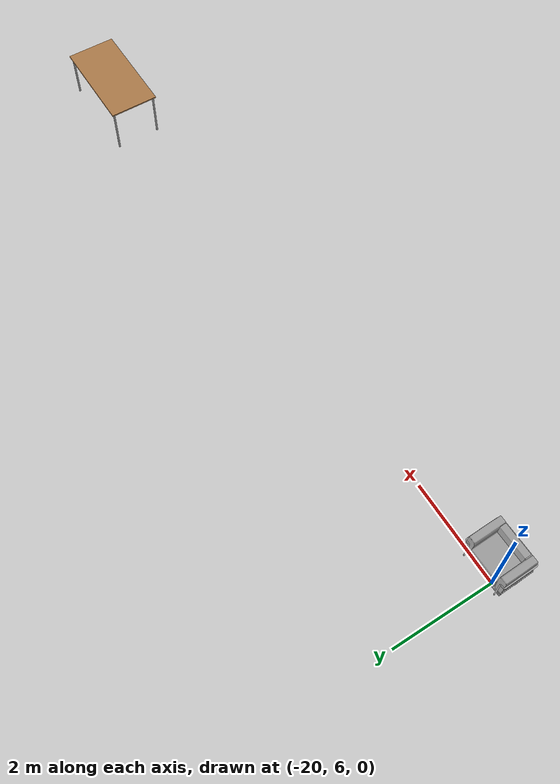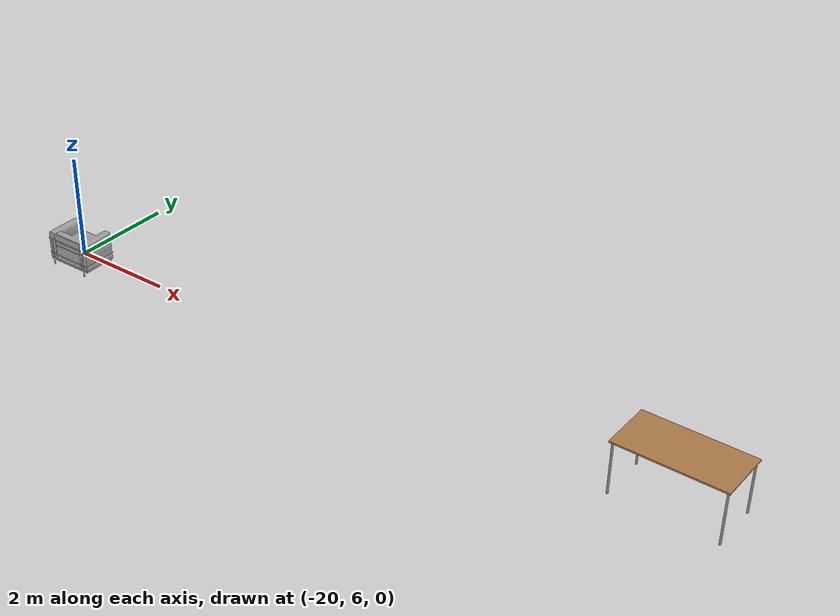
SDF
<sdf version="1.6">
 <model name="bibeg">
  <link name="link_clone_2">
   <pose>-7.46995 6.3907 0 0 -0 0</pose>
   <inertial>
    <mass>1</mass>
    <inertia><ixx>1</ixx><ixy>0</ixy><ixz>0</ixz><iyy>1</iyy><iyz>0</iyz><izz>1</izz></inertia>
   </inertial>
   <visual name="visual1">
    <pose>0 0 1 0 -0 0</pose>
    <geometry><box><size>2 1 0.03</size></box></geometry>
    <material>
     <script><uri>file://media/materials/scripts/gazebo.material</uri><name>Gazebo/Wood</name></script>
     <shader type="vertex"><normal_map>__default__</normal_map></shader>
     <ambient>1 1 1 1</ambient>
     <diffuse>1 1 1 1</diffuse>
     <specular>0.2 0.2 0.2 1</specular>
     <emissive>0 0 0 1</emissive>
    </material>
   </visual>
   <visual name="front_left_leg">
    <pose>0.95 0.45 0.5 0 -0 0</pose>
    <geometry><cylinder><radius>0.02</radius><length>1</length></cylinder></geometry>
    <material>
     <script><uri>file://media/materials/scripts/gazebo.material</uri><name>Gazebo/Grey</name></script>
     <shader type="vertex"><normal_map>__default__</normal_map></shader>
     <ambient>0.3 0.3 0.3 1</ambient>
     <diffuse>0.7 0.7 0.7 1</diffuse>
     <specular>0.01 0.01 0.01 1</specular>
     <emissive>0 0 0 1</emissive>
    </material>
   </visual>
   <visual name="front_right_leg">
    <pose>0.95 -0.45 0.5 0 -0 0</pose>
    <geometry><cylinder><radius>0.02</radius><length>1</length></cylinder></geometry>
    <material>
     <script><uri>file://media/materials/scripts/gazebo.material</uri><name>Gazebo/Grey</name></script>
     <shader type="vertex"><normal_map>__default__</normal_map></shader>
     <ambient>0.3 0.3 0.3 1</ambient>
     <diffuse>0.7 0.7 0.7 1</diffuse>
     <specular>0.01 0.01 0.01 1</specular>
     <emissive>0 0 0 1</emissive>
    </material>
   </visual>
   <visual name="back_right_leg">
    <pose>-0.95 -0.45 0.5 0 -0 0</pose>
    <geometry><cylinder><radius>0.02</radius><length>1</length></cylinder></geometry>
    <material>
     <script><uri>file://media/materials/scripts/gazebo.material</uri><name>Gazebo/Grey</name></script>
     <shader type="vertex"><normal_map>__default__</normal_map></shader>
     <ambient>0.3 0.3 0.3 1</ambient>
     <diffuse>0.7 0.7 0.7 1</diffuse>
     <specular>0.01 0.01 0.01 1</specular>
     <emissive>0 0 0 1</emissive>
    </material>
   </visual>
   <visual name="back_left_leg">
    <pose>-0.95 0.45 0.5 0 -0 0</pose>
    <geometry><cylinder><radius>0.02</radius><length>1</length></cylinder></geometry>
    <material>
     <script><uri>file://media/materials/scripts/gazebo.material</uri><name>Gazebo/Grey</name></script>
     <shader type="vertex"><normal_map>__default__</normal_map></shader>
     <ambient>0.3 0.3 0.3 1</ambient>
     <diffuse>0.7 0.7 0.7 1</diffuse>
     <specular>0.01 0.01 0.01 1</specular>
     <emissive>0 0 0 1</emissive>
    </material>
   </visual>
   <collision name="surface">
    <pose>0 0 1 0 -0 0</pose>
    <geometry><box><size>2 1 0.03</size></box></geometry>
    <surface>
     <friction>
      <ode><mu>1</mu><mu2>1</mu2><fdir1>0 0 0</fdir1><slip1>0</slip1><slip2>0</slip2></ode>
      <torsional>
       <coefficient>1</coefficient>
       <patch_radius>0</patch_radius>
       <surface_radius>0</surface_radius>
       <use_patch_radius>1</use_patch_radius>
       <ode><slip>0</slip></ode>
      </torsional>
     </friction>
     <bounce><restitution_coefficient>0</restitution_coefficient><threshold>1e+06</threshold></bounce>
     <contact>
      <collide_without_contact>0</collide_without_contact>
      <collide_without_contact_bitmask>1</collide_without_contact_bitmask>
      <collide_bitmask>1</collide_bitmask>
      <ode>
       <soft_cfm>0</soft_cfm>
       <soft_erp>0.2</soft_erp>
       <kp>1e+13</kp>
       <kd>1</kd>
       <max_vel>0.01</max_vel>
       <min_depth>0</min_depth>
      </ode>
      <bullet>
       <split_impulse>1</split_impulse>
       <split_impulse_penetration_threshold>-0.01</split_impulse_penetration_threshold>
       <soft_cfm>0</soft_cfm>
       <soft_erp>0.2</soft_erp>
       <kp>1e+13</kp>
       <kd>1</kd>
      </bullet>
     </contact>
    </surface>
   </collision>
   <collision name="front_left_leg_0">
    <pose>0.95 0.45 0.5 0 -0 0</pose>
    <geometry><cylinder><radius>0.02</radius><length>1</length></cylinder></geometry>
    <surface>
     <friction>
      <ode><mu>1</mu><mu2>1</mu2><fdir1>0 0 0</fdir1><slip1>0</slip1><slip2>0</slip2></ode>
      <torsional>
       <coefficient>1</coefficient>
       <patch_radius>0</patch_radius>
       <surface_radius>0</surface_radius>
       <use_patch_radius>1</use_patch_radius>
       <ode><slip>0</slip></ode>
      </torsional>
     </friction>
     <bounce><restitution_coefficient>0</restitution_coefficient><threshold>1e+06</threshold></bounce>
     <contact>
      <collide_without_contact>0</collide_without_contact>
      <collide_without_contact_bitmask>1</collide_without_contact_bitmask>
      <collide_bitmask>1</collide_bitmask>
      <ode>
       <soft_cfm>0</soft_cfm>
       <soft_erp>0.2</soft_erp>
       <kp>1e+13</kp>
       <kd>1</kd>
       <max_vel>0.01</max_vel>
       <min_depth>0</min_depth>
      </ode>
      <bullet>
       <split_impulse>1</split_impulse>
       <split_impulse_penetration_threshold>-0.01</split_impulse_penetration_threshold>
       <soft_cfm>0</soft_cfm>
       <soft_erp>0.2</soft_erp>
       <kp>1e+13</kp>
       <kd>1</kd>
      </bullet>
     </contact>
    </surface>
   </collision>
   <collision name="front_right_leg_0">
    <pose>0.95 -0.45 0.5 0 -0 0</pose>
    <geometry><cylinder><radius>0.02</radius><length>1</length></cylinder></geometry>
    <surface>
     <friction>
      <ode><mu>1</mu><mu2>1</mu2><fdir1>0 0 0</fdir1><slip1>0</slip1><slip2>0</slip2></ode>
      <torsional>
       <coefficient>1</coefficient>
       <patch_radius>0</patch_radius>
       <surface_radius>0</surface_radius>
       <use_patch_radius>1</use_patch_radius>
       <ode><slip>0</slip></ode>
      </torsional>
     </friction>
     <bounce><restitution_coefficient>0</restitution_coefficient><threshold>1e+06</threshold></bounce>
     <contact>
      <collide_without_contact>0</collide_without_contact>
      <collide_without_contact_bitmask>1</collide_without_contact_bitmask>
      <collide_bitmask>1</collide_bitmask>
      <ode>
       <soft_cfm>0</soft_cfm>
       <soft_erp>0.2</soft_erp>
       <kp>1e+13</kp>
       <kd>1</kd>
       <max_vel>0.01</max_vel>
       <min_depth>0</min_depth>
      </ode>
      <bullet>
       <split_impulse>1</split_impulse>
       <split_impulse_penetration_threshold>-0.01</split_impulse_penetration_threshold>
       <soft_cfm>0</soft_cfm>
       <soft_erp>0.2</soft_erp>
       <kp>1e+13</kp>
       <kd>1</kd>
      </bullet>
     </contact>
    </surface>
   </collision>
   <collision name="back_right_leg_0">
    <pose>-0.95 -0.45 0.5 0 -0 0</pose>
    <geometry><cylinder><radius>0.02</radius><length>1</length></cylinder></geometry>
    <surface>
     <friction>
      <ode><mu>1</mu><mu2>1</mu2><fdir1>0 0 0</fdir1><slip1>0</slip1><slip2>0</slip2></ode>
      <torsional>
       <coefficient>1</coefficient>
       <patch_radius>0</patch_radius>
       <surface_radius>0</surface_radius>
       <use_patch_radius>1</use_patch_radius>
       <ode><slip>0</slip></ode>
      </torsional>
     </friction>
     <bounce><restitution_coefficient>0</restitution_coefficient><threshold>1e+06</threshold></bounce>
     <contact>
      <collide_without_contact>0</collide_without_contact>
      <collide_without_contact_bitmask>1</collide_without_contact_bitmask>
      <collide_bitmask>1</collide_bitmask>
      <ode>
       <soft_cfm>0</soft_cfm>
       <soft_erp>0.2</soft_erp>
       <kp>1e+13</kp>
       <kd>1</kd>
       <max_vel>0.01</max_vel>
       <min_depth>0</min_depth>
      </ode>
      <bullet>
       <split_impulse>1</split_impulse>
       <split_impulse_penetration_threshold>-0.01</split_impulse_penetration_threshold>
       <soft_cfm>0</soft_cfm>
       <soft_erp>0.2</soft_erp>
       <kp>1e+13</kp>
       <kd>1</kd>
      </bullet>
     </contact>
    </surface>
   </collision>
   <collision name="back_left_leg_0">
    <pose>-0.68 0.38 0.5 0 -0 0</pose>
    <geometry><cylinder><radius>0.02</radius><length>1</length></cylinder></geometry>
    <surface>
     <friction>
      <ode><mu>1</mu><mu2>1</mu2><fdir1>0 0 0</fdir1><slip1>0</slip1><slip2>0</slip2></ode>
      <torsional>
       <coefficient>1</coefficient>
       <patch_radius>0</patch_radius>
       <surface_radius>0</surface_radius>
       <use_patch_radius>1</use_patch_radius>
       <ode><slip>0</slip></ode>
      </torsional>
     </friction>
     <bounce><restitution_coefficient>0</restitution_coefficient><threshold>1e+06</threshold></bounce>
     <contact>
      <collide_without_contact>0</collide_without_contact>
      <collide_without_contact_bitmask>1</collide_without_contact_bitmask>
      <collide_bitmask>1</collide_bitmask>
      <ode>
       <soft_cfm>0</soft_cfm>
       <soft_erp>0.2</soft_erp>
       <kp>1e+13</kp>
       <kd>1</kd>
       <max_vel>0.01</max_vel>
       <min_depth>0</min_depth>
      </ode>
      <bullet>
       <split_impulse>1</split_impulse>
       <split_impulse_penetration_threshold>-0.01</split_impulse_penetration_threshold>
       <soft_cfm>0</soft_cfm>
       <soft_erp>0.2</soft_erp>
       <kp>1e+13</kp>
       <kd>1</kd>
      </bullet>
     </contact>
    </surface>
   </collision>
  </link>
  <model name="chair_set_1_3_clone_2">
   <link name="link_16">
    <pose>0.07217 0.114259 -0.032065 0 -0 1.57</pose>
    <visual name="visual">
     <geometry><mesh><uri>model://chair_set_1/meshes/chair_frame.dae</uri><scale>1 1 1</scale></mesh></geometry>
     <material>
      <lighting>1</lighting>
      <ambient>0.3 0.3 0.3 1</ambient>
      <diffuse>0.7 0.7 0.7 1</diffuse>
      <specular>0.01 0.01 0.01 1</specular>
      <emissive>0 0 0 1</emissive>
      <shader type="vertex"><normal_map>__default__</normal_map></shader>
     </material>
    </visual>
    <collision name="collision">
     <geometry><mesh><uri>model://chair_set_1/meshes/chair_frame.dae</uri><scale>1 1 1</scale></mesh></geometry>
    </collision>
   </link>
   <link name="link_17">
    <pose>0.069192 0.1237 -0.032065 0 -0 1.57</pose>
    <visual name="visual">
     <geometry><mesh><uri>model://chair_set_1/meshes/chair_cushions.dae</uri><scale>1 1 1</scale></mesh></geometry>
     <material>
      <script>
       <uri>model://chair_set_1/materials/scripts</uri>
       <uri>model://chair_set_1/materials/textures</uri>
       <name>chair_set_1</name>
      </script>
     </material>
    </visual>
    <collision name="collision">
     <geometry><mesh><uri>model://chair_set_1/meshes/chair_cushions.dae</uri><scale>1 1 1</scale></mesh></geometry>
    </collision>
   </link>
   <link name="link_18">
    <pose>0.606963 -0.367766 -0.032065 0 -0 0</pose>
    <visual name="visual">
     <geometry>
      <mesh><uri>model://chair_set_1/meshes/sofa_cushions_back.dae</uri><scale>1 1 1</scale></mesh>
     </geometry>
     <material>
      <script>
       <uri>model://chair_set_1/materials/scripts</uri>
       <uri>model://chair_set_1/materials/textures</uri>
       <name>chair_set_1</name>
      </script>
     </material>
    </visual>
    <collision name="collision">
     <geometry>
      <mesh><uri>model://chair_set_1/meshes/sofa_cushions_back.dae</uri><scale>1 1 1</scale></mesh>
     </geometry>
    </collision>
   </link>
   <static>1</static>
   <pose>-19.7709 5.72689 0 0 0 -3.12094</pose>
  </model>
  <static>1</static>
 </model>
</sdf>
